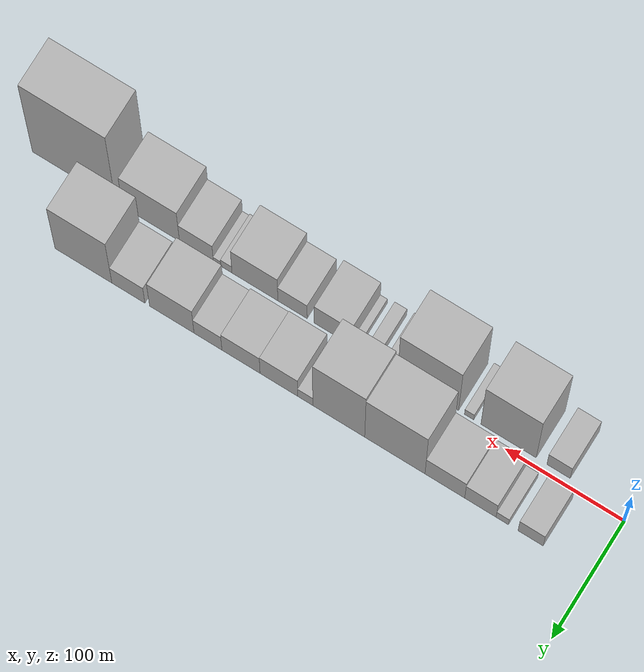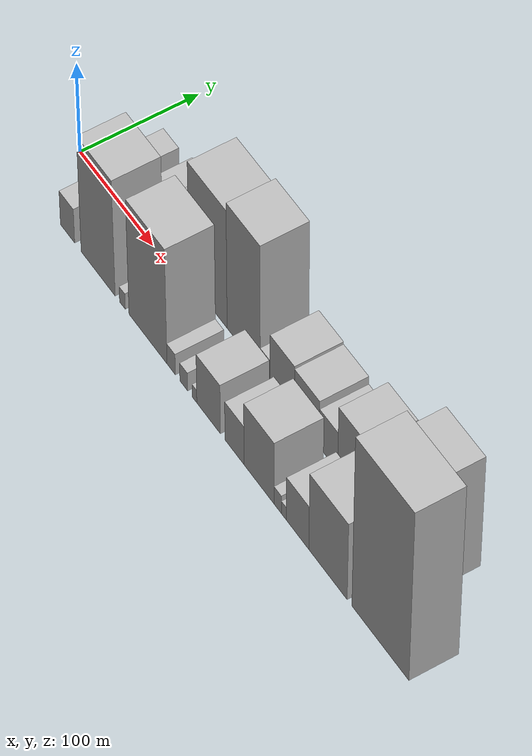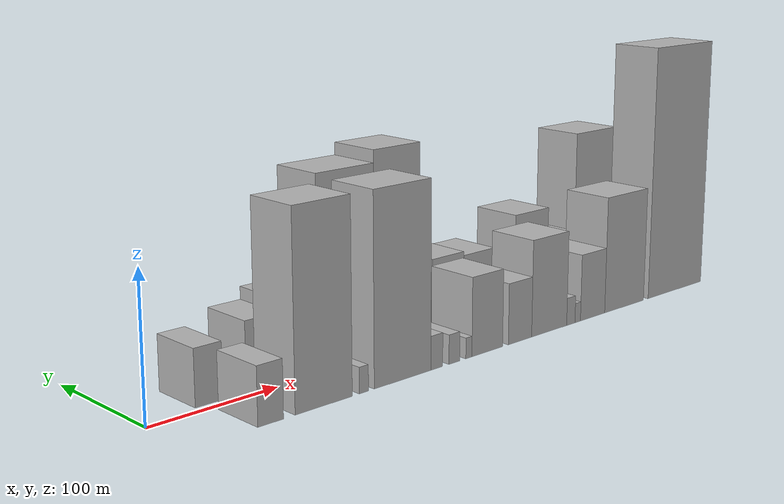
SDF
<sdf version="1.6">
 <world name="default">
  <scene>
   <sky><clouds><speed>12</speed></clouds></sky>
   <ambient>0.4 0.4 0.4 1</ambient>
   <background>0.7 0.7 0.7 1</background>
   <shadows>1</shadows>
  </scene>
  <gravity>0 0 -9.8066</gravity>
  <magnetic_field>6e-06 2.3e-05 -4.2e-05</magnetic_field>
  <physics default="0" name="default_physics" type="ode">
   <ode>
    <solver>
     <type>quick</type>
     <iters>10</iters>
     <sor>1.0</sor>
     <use_dynamic_moi_rescaling>0</use_dynamic_moi_rescaling>
    </solver>
    <constraints>
     <cfm>0</cfm>
     <erp>0.2</erp>
     <contact_max_correcting_vel>100</contact_max_correcting_vel>
     <contact_surface_layer>0.001</contact_surface_layer>
    </constraints>
   </ode>
   <max_step_size>0.004</max_step_size>
   <real_time_factor>1</real_time_factor>
   <real_time_update_rate>250</real_time_update_rate>
  </physics>
  <light name="sun" type="directional">
   <pose>0 0 10 0 0 0</pose>
   <diffuse>0.8 0.8 0.8 1</diffuse>
   <specular>0.2 0.2 0.2 1</specular>
   <attenuation>
    <range>1000</range>
    <constant>0.9</constant>
    <linear>0.01</linear>
    <quadratic>0.001</quadratic>
   </attenuation>
   <direction>-0.5 0.1 -0.9</direction>
  </light>
  <model name="building_1">
   <static>1</static>
   <pose>50.5340 26.0000 0 0.000000 0.000000 1.570796</pose>
   <link name="link">
    <pose>0 0 19.50 0 0 0</pose>
    <collision name="collision"><geometry><box><size>40.0000 21.0679 39.0000</size></box></geometry></collision>
    <visual name="visual">
     <cast_shadows>0</cast_shadows>
     <geometry><box><size>40.0000 21.0679 39.0000</size></box></geometry>
     <material>
      <script>
       <uri>model://HANNAS_wall/materials/scripts</uri>
       <uri>model://HANNAS_wall/materials/textures</uri>
       <name>vrc/HANNAS_wall</name>
      </script>
     </material>
    </visual>
   </link>
  </model>
  <model name="building_2">
   <static>1</static>
   <pose>74.2713 26.0000 0 0.000000 0.000000 1.570796</pose>
   <link name="link">
    <pose>0 0 10.50 0 0 0</pose>
    <collision name="collision"><geometry><box><size>40.0000 10.4068 21.0000</size></box></geometry></collision>
    <visual name="visual">
     <cast_shadows>0</cast_shadows>
     <geometry><box><size>40.0000 10.4068 21.0000</size></box></geometry>
     <material>
      <script>
       <uri>model://HANNAS_wall/materials/scripts</uri>
       <uri>model://HANNAS_wall/materials/textures</uri>
       <name>vrc/HANNAS_wall</name>
      </script>
     </material>
    </visual>
   </link>
  </model>
  <model name="building_3">
   <static>1</static>
   <pose>92.6704 26.0000 0 0.000000 0.000000 1.570796</pose>
   <link name="link">
    <pose>0 0 24.00 0 0 0</pose>
    <collision name="collision"><geometry><box><size>40.0000 26.3914 48.0000</size></box></geometry></collision>
    <visual name="visual">
     <cast_shadows>0</cast_shadows>
     <geometry><box><size>40.0000 26.3914 48.0000</size></box></geometry>
     <material>
      <script>
       <uri>model://HANNAS_wall/materials/scripts</uri>
       <uri>model://HANNAS_wall/materials/textures</uri>
       <name>vrc/HANNAS_wall</name>
      </script>
     </material>
    </visual>
   </link>
  </model>
  <model name="building_4">
   <static>1</static>
   <pose>122.5454 26.0000 0 0.000000 0.000000 1.570796</pose>
   <link name="link">
    <pose>0 0 28.50 0 0 0</pose>
    <collision name="collision"><geometry><box><size>40.0000 33.3586 57.0000</size></box></geometry></collision>
    <visual name="visual">
     <cast_shadows>0</cast_shadows>
     <geometry><box><size>40.0000 33.3586 57.0000</size></box></geometry>
     <material>
      <script>
       <uri>model://HANNAS_wall/materials/scripts</uri>
       <uri>model://HANNAS_wall/materials/textures</uri>
       <name>vrc/HANNAS_wall</name>
      </script>
     </material>
    </visual>
   </link>
  </model>
  <model name="building_5">
   <static>1</static>
   <pose>164.6290 26.0000 0 0.000000 0.000000 1.570796</pose>
   <link name="link">
    <pose>0 0 67.50 0 0 0</pose>
    <collision name="collision"><geometry><box><size>40.0000 50.8088 135.0000</size></box></geometry></collision>
    <visual name="visual">
     <cast_shadows>0</cast_shadows>
     <geometry><box><size>40.0000 50.8088 135.0000</size></box></geometry>
     <material>
      <script>
       <uri>model://HANNAS_wall/materials/scripts</uri>
       <uri>model://HANNAS_wall/materials/textures</uri>
       <name>vrc/HANNAS_wall</name>
      </script>
     </material>
    </visual>
   </link>
  </model>
  <model name="building_6">
   <static>1</static>
   <pose>211.9313 26.0000 0 0.000000 0.000000 1.570796</pose>
   <link name="link">
    <pose>0 0 72.00 0 0 0</pose>
    <collision name="collision"><geometry><box><size>40.0000 43.7958 144.0000</size></box></geometry></collision>
    <visual name="visual">
     <cast_shadows>0</cast_shadows>
     <geometry><box><size>40.0000 43.7958 144.0000</size></box></geometry>
     <material>
      <script>
       <uri>model://HANNAS_wall/materials/scripts</uri>
       <uri>model://HANNAS_wall/materials/textures</uri>
       <name>vrc/HANNAS_wall</name>
      </script>
     </material>
    </visual>
   </link>
  </model>
  <model name="building_7">
   <static>1</static>
   <pose>240.2215 26.0000 0 0.000000 0.000000 1.570796</pose>
   <link name="link">
    <pose>0 0 13.50 0 0 0</pose>
    <collision name="collision"><geometry><box><size>40.0000 12.7845 27.0000</size></box></geometry></collision>
    <visual name="visual">
     <cast_shadows>0</cast_shadows>
     <geometry><box><size>40.0000 12.7845 27.0000</size></box></geometry>
     <material>
      <script>
       <uri>model://HANNAS_wall/materials/scripts</uri>
       <uri>model://HANNAS_wall/materials/textures</uri>
       <name>vrc/HANNAS_wall</name>
      </script>
     </material>
    </visual>
   </link>
  </model>
  <model name="building_8">
   <static>1</static>
   <pose>262.5495 26.0000 0 0.000000 0.000000 1.570796</pose>
   <link name="link">
    <pose>0 0 28.50 0 0 0</pose>
    <collision name="collision"><geometry><box><size>40.0000 31.8716 57.0000</size></box></geometry></collision>
    <visual name="visual">
     <cast_shadows>0</cast_shadows>
     <geometry><box><size>40.0000 31.8716 57.0000</size></box></geometry>
     <material>
      <script>
       <uri>model://HANNAS_wall/materials/scripts</uri>
       <uri>model://HANNAS_wall/materials/textures</uri>
       <name>vrc/HANNAS_wall</name>
      </script>
     </material>
    </visual>
   </link>
  </model>
  <model name="building_9">
   <static>1</static>
   <pose>294.6824 26.0000 0 0.000000 0.000000 1.570796</pose>
   <link name="link">
    <pose>0 0 27.00 0 0 0</pose>
    <collision name="collision"><geometry><box><size>40.0000 32.3941 54.0000</size></box></geometry></collision>
    <visual name="visual">
     <cast_shadows>0</cast_shadows>
     <geometry><box><size>40.0000 32.3941 54.0000</size></box></geometry>
     <material>
      <script>
       <uri>model://HANNAS_wall/materials/scripts</uri>
       <uri>model://HANNAS_wall/materials/textures</uri>
       <name>vrc/HANNAS_wall</name>
      </script>
     </material>
    </visual>
   </link>
  </model>
  <model name="building_10">
   <static>1</static>
   <pose>322.7314 26.0000 0 0.000000 0.000000 1.570796</pose>
   <link name="link">
    <pose>0 0 22.50 0 0 0</pose>
    <collision name="collision"><geometry><box><size>40.0000 23.7038 45.0000</size></box></geometry></collision>
    <visual name="visual">
     <cast_shadows>0</cast_shadows>
     <geometry><box><size>40.0000 23.7038 45.0000</size></box></geometry>
     <material>
      <script>
       <uri>model://HANNAS_wall/materials/scripts</uri>
       <uri>model://HANNAS_wall/materials/textures</uri>
       <name>vrc/HANNAS_wall</name>
      </script>
     </material>
    </visual>
   </link>
  </model>
  <model name="building_11">
   <static>1</static>
   <pose>353.4456 26.0000 0 0.000000 0.000000 1.570796</pose>
   <link name="link">
    <pose>0 0 37.50 0 0 0</pose>
    <collision name="collision"><geometry><box><size>40.0000 37.7248 75.0000</size></box></geometry></collision>
    <visual name="visual">
     <cast_shadows>0</cast_shadows>
     <geometry><box><size>40.0000 37.7248 75.0000</size></box></geometry>
     <material>
      <script>
       <uri>model://HANNAS_wall/materials/scripts</uri>
       <uri>model://HANNAS_wall/materials/textures</uri>
       <name>vrc/HANNAS_wall</name>
      </script>
     </material>
    </visual>
   </link>
  </model>
  <model name="building_12">
   <static>1</static>
   <pose>390.3895 26.0000 0 0.000000 0.000000 1.570796</pose>
   <link name="link">
    <pose>0 0 25.50 0 0 0</pose>
    <collision name="collision"><geometry><box><size>40.0000 28.1629 51.0000</size></box></geometry></collision>
    <visual name="visual">
     <cast_shadows>0</cast_shadows>
     <geometry><box><size>40.0000 28.1629 51.0000</size></box></geometry>
     <material>
      <script>
       <uri>model://HANNAS_wall/materials/scripts</uri>
       <uri>model://HANNAS_wall/materials/textures</uri>
       <name>vrc/HANNAS_wall</name>
      </script>
     </material>
    </visual>
   </link>
  </model>
  <model name="building_13">
   <static>1</static>
   <pose>428.7352 26.0000 0 0.000000 0.000000 1.570796</pose>
   <link name="link">
    <pose>0 0 64.50 0 0 0</pose>
    <collision name="collision"><geometry><box><size>40.0000 48.5285 129.0000</size></box></geometry></collision>
    <visual name="visual">
     <cast_shadows>0</cast_shadows>
     <geometry><box><size>40.0000 48.5285 129.0000</size></box></geometry>
     <material>
      <script>
       <uri>model://HANNAS_wall/materials/scripts</uri>
       <uri>model://HANNAS_wall/materials/textures</uri>
       <name>vrc/HANNAS_wall</name>
      </script>
     </material>
    </visual>
   </link>
  </model>
  <model name="building_14">
   <static>1</static>
   <pose>58.7984 -26.0000 0 0.000000 0.000000 1.570796</pose>
   <link name="link">
    <pose>0 0 19.50 0 0 0</pose>
    <collision name="collision"><geometry><box><size>40.0000 19.5967 39.0000</size></box></geometry></collision>
    <visual name="visual">
     <cast_shadows>0</cast_shadows>
     <geometry><box><size>40.0000 19.5967 39.0000</size></box></geometry>
     <material>
      <script>
       <uri>model://HANNAS_wall/materials/scripts</uri>
       <uri>model://HANNAS_wall/materials/textures</uri>
       <name>vrc/HANNAS_wall</name>
      </script>
     </material>
    </visual>
   </link>
  </model>
  <model name="building_15">
   <static>1</static>
   <pose>100.8456 -26.0000 0 0.000000 0.000000 1.570796</pose>
   <link name="link">
    <pose>0 0 66.00 0 0 0</pose>
    <collision name="collision"><geometry><box><size>40.0000 46.4978 132.0000</size></box></geometry></collision>
    <visual name="visual">
     <cast_shadows>0</cast_shadows>
     <geometry><box><size>40.0000 46.4978 132.0000</size></box></geometry>
     <material>
      <script>
       <uri>model://HANNAS_wall/materials/scripts</uri>
       <uri>model://HANNAS_wall/materials/textures</uri>
       <name>vrc/HANNAS_wall</name>
      </script>
     </material>
    </visual>
   </link>
  </model>
  <model name="building_16">
   <static>1</static>
   <pose>133.9995 -26.0000 0 0.000000 0.000000 1.570796</pose>
   <link name="link">
    <pose>0 0 9.00 0 0 0</pose>
    <collision name="collision"><geometry><box><size>40.0000 7.8099 18.0000</size></box></geometry></collision>
    <visual name="visual">
     <cast_shadows>0</cast_shadows>
     <geometry><box><size>40.0000 7.8099 18.0000</size></box></geometry>
     <material>
      <script>
       <uri>model://HANNAS_wall/materials/scripts</uri>
       <uri>model://HANNAS_wall/materials/textures</uri>
       <name>vrc/HANNAS_wall</name>
      </script>
     </material>
    </visual>
   </link>
  </model>
  <model name="building_17">
   <static>1</static>
   <pose>168.4821 -26.0000 0 0.000000 0.000000 1.570796</pose>
   <link name="link">
    <pose>0 0 66.00 0 0 0</pose>
    <collision name="collision"><geometry><box><size>40.0000 51.1553 132.0000</size></box></geometry></collision>
    <visual name="visual">
     <cast_shadows>0</cast_shadows>
     <geometry><box><size>40.0000 51.1553 132.0000</size></box></geometry>
     <material>
      <script>
       <uri>model://HANNAS_wall/materials/scripts</uri>
       <uri>model://HANNAS_wall/materials/textures</uri>
       <name>vrc/HANNAS_wall</name>
      </script>
     </material>
    </visual>
   </link>
  </model>
  <model name="building_18">
   <static>1</static>
   <pose>199.6412 -26.0000 0 0.000000 0.000000 1.570796</pose>
   <link name="link">
    <pose>0 0 12.00 0 0 0</pose>
    <collision name="collision"><geometry><box><size>40.0000 11.1629 24.0000</size></box></geometry></collision>
    <visual name="visual">
     <cast_shadows>0</cast_shadows>
     <geometry><box><size>40.0000 11.1629 24.0000</size></box></geometry>
     <material>
      <script>
       <uri>model://HANNAS_wall/materials/scripts</uri>
       <uri>model://HANNAS_wall/materials/textures</uri>
       <name>vrc/HANNAS_wall</name>
      </script>
     </material>
    </visual>
   </link>
  </model>
  <model name="building_19">
   <static>1</static>
   <pose>216.4419 -26.0000 0 0.000000 0.000000 1.570796</pose>
   <link name="link">
    <pose>0 0 10.50 0 0 0</pose>
    <collision name="collision"><geometry><box><size>40.0000 10.4383 21.0000</size></box></geometry></collision>
    <visual name="visual">
     <cast_shadows>0</cast_shadows>
     <geometry><box><size>40.0000 10.4383 21.0000</size></box></geometry>
     <material>
      <script>
       <uri>model://HANNAS_wall/materials/scripts</uri>
       <uri>model://HANNAS_wall/materials/textures</uri>
       <name>vrc/HANNAS_wall</name>
      </script>
     </material>
    </visual>
   </link>
  </model>
  <model name="building_20">
   <static>1</static>
   <pose>230.6820 -26.0000 0 0.000000 0.000000 1.570796</pose>
   <link name="link">
    <pose>0 0 7.50 0 0 0</pose>
    <collision name="collision"><geometry><box><size>40.0000 6.0420 15.0000</size></box></geometry></collision>
    <visual name="visual">
     <cast_shadows>0</cast_shadows>
     <geometry><box><size>40.0000 6.0420 15.0000</size></box></geometry>
     <material>
      <script>
       <uri>model://HANNAS_wall/materials/scripts</uri>
       <uri>model://HANNAS_wall/materials/textures</uri>
       <name>vrc/HANNAS_wall</name>
      </script>
     </material>
    </visual>
   </link>
  </model>
  <model name="building_21">
   <static>1</static>
   <pose>249.2956 -26.0000 0 0.000000 0.000000 1.570796</pose>
   <link name="link">
    <pose>0 0 28.50 0 0 0</pose>
    <collision name="collision"><geometry><box><size>40.0000 31.1852 57.0000</size></box></geometry></collision>
    <visual name="visual">
     <cast_shadows>0</cast_shadows>
     <geometry><box><size>40.0000 31.1852 57.0000</size></box></geometry>
     <material>
      <script>
       <uri>model://HANNAS_wall/materials/scripts</uri>
       <uri>model://HANNAS_wall/materials/textures</uri>
       <name>vrc/HANNAS_wall</name>
      </script>
     </material>
    </visual>
   </link>
  </model>
  <model name="building_22">
   <static>1</static>
   <pose>283.3195 -26.0000 0 0.000000 0.000000 1.570796</pose>
   <link name="link">
    <pose>0 0 22.50 0 0 0</pose>
    <collision name="collision"><geometry><box><size>40.0000 24.8626 45.0000</size></box></geometry></collision>
    <visual name="visual">
     <cast_shadows>0</cast_shadows>
     <geometry><box><size>40.0000 24.8626 45.0000</size></box></geometry>
     <material>
      <script>
       <uri>model://HANNAS_wall/materials/scripts</uri>
       <uri>model://HANNAS_wall/materials/textures</uri>
       <name>vrc/HANNAS_wall</name>
      </script>
     </material>
    </visual>
   </link>
  </model>
  <model name="building_23">
   <static>1</static>
   <pose>315.2714 -26.0000 0 0.000000 0.000000 1.570796</pose>
   <link name="link">
    <pose>0 0 36.00 0 0 0</pose>
    <collision name="collision"><geometry><box><size>40.0000 39.0412 72.0000</size></box></geometry></collision>
    <visual name="visual">
     <cast_shadows>0</cast_shadows>
     <geometry><box><size>40.0000 39.0412 72.0000</size></box></geometry>
     <material>
      <script>
       <uri>model://HANNAS_wall/materials/scripts</uri>
       <uri>model://HANNAS_wall/materials/textures</uri>
       <name>vrc/HANNAS_wall</name>
      </script>
     </material>
    </visual>
   </link>
  </model>
  <model name="building_24">
   <static>1</static>
   <pose>339.5559 -26.0000 0 0.000000 0.000000 1.570796</pose>
   <link name="link">
    <pose>0 0 10.50 0 0 0</pose>
    <collision name="collision"><geometry><box><size>40.0000 9.5278 21.0000</size></box></geometry></collision>
    <visual name="visual">
     <cast_shadows>0</cast_shadows>
     <geometry><box><size>40.0000 9.5278 21.0000</size></box></geometry>
     <material>
      <script>
       <uri>model://HANNAS_wall/materials/scripts</uri>
       <uri>model://HANNAS_wall/materials/textures</uri>
       <name>vrc/HANNAS_wall</name>
      </script>
     </material>
    </visual>
   </link>
  </model>
  <model name="building_25">
   <static>1</static>
   <pose>347.5009 -26.0000 0 0.000000 0.000000 1.570796</pose>
   <link name="link">
    <pose>0 0 7.50 0 0 0</pose>
    <collision name="collision"><geometry><box><size>40.0000 6.3622 15.0000</size></box></geometry></collision>
    <visual name="visual">
     <cast_shadows>0</cast_shadows>
     <geometry><box><size>40.0000 6.3622 15.0000</size></box></geometry>
     <material>
      <script>
       <uri>model://HANNAS_wall/materials/scripts</uri>
       <uri>model://HANNAS_wall/materials/textures</uri>
       <name>vrc/HANNAS_wall</name>
      </script>
     </material>
    </visual>
   </link>
  </model>
  <model name="building_26">
   <static>1</static>
   <pose>365.1162 -26.0000 0 0.000000 0.000000 1.570796</pose>
   <link name="link">
    <pose>0 0 25.50 0 0 0</pose>
    <collision name="collision"><geometry><box><size>40.0000 28.8684 51.0000</size></box></geometry></collision>
    <visual name="visual">
     <cast_shadows>0</cast_shadows>
     <geometry><box><size>40.0000 28.8684 51.0000</size></box></geometry>
     <material>
      <script>
       <uri>model://HANNAS_wall/materials/scripts</uri>
       <uri>model://HANNAS_wall/materials/textures</uri>
       <name>vrc/HANNAS_wall</name>
      </script>
     </material>
    </visual>
   </link>
  </model>
  <model name="building_27">
   <static>1</static>
   <pose>403.8513 -26.0000 0 0.000000 0.000000 1.570796</pose>
   <link name="link">
    <pose>0 0 45.00 0 0 0</pose>
    <collision name="collision"><geometry><box><size>40.0000 48.6019 90.0000</size></box></geometry></collision>
    <visual name="visual">
     <cast_shadows>0</cast_shadows>
     <geometry><box><size>40.0000 48.6019 90.0000</size></box></geometry>
     <material>
      <script>
       <uri>model://HANNAS_wall/materials/scripts</uri>
       <uri>model://HANNAS_wall/materials/textures</uri>
       <name>vrc/HANNAS_wall</name>
      </script>
     </material>
    </visual>
   </link>
  </model>
  <model name="building_28">
   <static>1</static>
   <pose>469.7414 -26.0000 0 0.000000 0.000000 1.570796</pose>
   <link name="link">
    <pose>0 0 99.00 0 0 0</pose>
    <collision name="collision"><geometry><box><size>40.0000 71.1783 198.0000</size></box></geometry></collision>
    <visual name="visual">
     <cast_shadows>0</cast_shadows>
     <geometry><box><size>40.0000 71.1783 198.0000</size></box></geometry>
     <material>
      <script>
       <uri>model://HANNAS_wall/materials/scripts</uri>
       <uri>model://HANNAS_wall/materials/textures</uri>
       <name>vrc/HANNAS_wall</name>
      </script>
     </material>
    </visual>
   </link>
  </model>
 </world>
</sdf>
